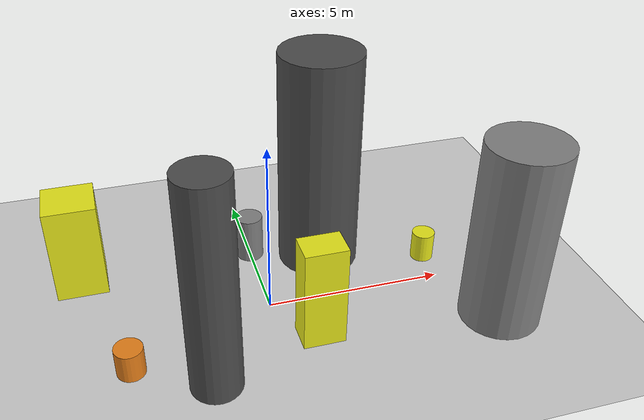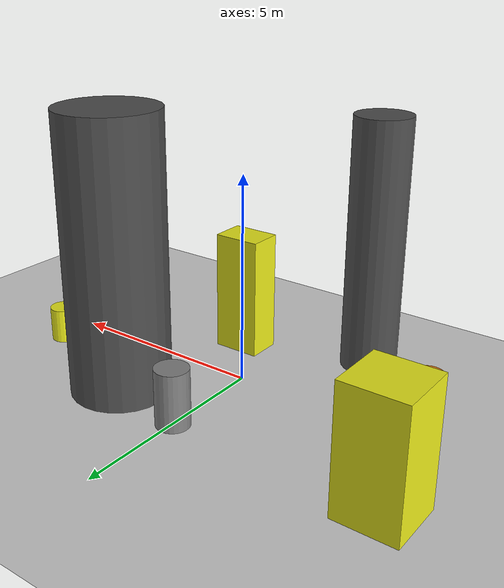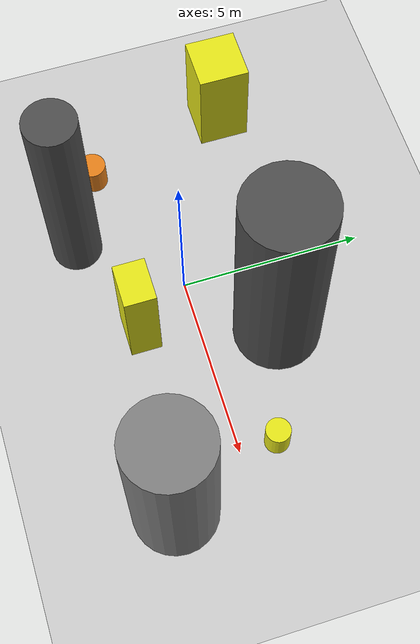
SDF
<?xml version='1.0'?>
<sdf version='1.6'>
  <world name='routeA_rl_v1__support_expansion__rl_train__mixed_3d_low_density_route__000125'>
    <!-- Sun light -->
    <light name='sun' type='directional'>
      <cast_shadows>1</cast_shadows>
      <pose>0 0 10 0 0 0</pose>
      <diffuse>0.8 0.8 0.8 1</diffuse>
      <specular>0.2 0.2 0.2 1</specular>
      <attenuation>
        <range>1000</range>
        <constant>0.9</constant>
        <linear>0.01</linear>
        <quadratic>0.001</quadratic>
      </attenuation>
      <direction>-0.5 0.1 -0.9</direction>
    </light>

    <!-- Ground plane -->
    <model name='ground_plane'>
      <static>1</static>
      <link name='link'>
        <collision name='collision'>
          <geometry>
            <plane>
              <normal>0 0 1</normal>
              <size>100 100</size>
            </plane>
          </geometry>
          <surface>
            <contact>
              <collide_bitmask>65535</collide_bitmask>
              <ode/>
            </contact>
            <friction>
              <ode>
                <mu>100</mu>
                <mu2>50</mu2>
              </ode>
              <torsional><ode/></torsional>
            </friction>
            <bounce/>
          </surface>
          <max_contacts>10</max_contacts>
        </collision>
        <visual name='visual'>
          <cast_shadows>0</cast_shadows>
          <geometry>
            <plane>
              <normal>0 0 1</normal>
              <size>100 100</size>
            </plane>
          </geometry>
          <material>
            <script>
              <uri>file://media/materials/scripts/gazebo.material</uri>
              <n>Gazebo/Grey</n>
            </script>
          </material>
        </visual>
      </link>
    </model>

    <!-- Environment -->
    <magnetic_field>6e-06 2.3e-05 -4.2e-05</magnetic_field>
    <atmosphere type='adiabatic'/>
    <physics name='default_physics' default='0' type='ode'>
      <gravity>0 0 -9.8</gravity>
      <max_step_size>0.004</max_step_size>
      <real_time_factor>1</real_time_factor>
      <real_time_update_rate>250</real_time_update_rate>
    </physics>
    <scene>
      <ambient>0.4 0.4 0.4 1</ambient>
      <background>0.7 0.7 0.7 1</background>
      <shadows>1</shadows>
    </scene>
    <wind/>
    <spherical_coordinates>
      <surface_model>EARTH_WGS84</surface_model>
      <latitude_deg>0</latitude_deg>
      <longitude_deg>0</longitude_deg>
      <elevation>0</elevation>
      <heading_deg>0</heading_deg>
    </spherical_coordinates>

    <!-- ============ OBSTACLES (8) ============ -->
    <model name='low_obs_0'>
      <static>1</static>
      <link name='link'>
        <visual name='visual'>
          <geometry>
            <cylinder>
              <radius>0.3783</radius>
              <length>0.8095</length>
            </cylinder>
          </geometry>
          <material>
            <script>
              <n>Gazebo/Orange</n>
              <uri>file://media/materials/scripts/gazebo.material</uri>
            </script>
            <ambient>0.9 0.5 0.1 1</ambient>
          </material>
        </visual>
        <collision name='collision'>
          <geometry>
            <cylinder>
              <radius>0.3783</radius>
              <length>0.8095</length>
            </cylinder>
          </geometry>
          <max_contacts>10</max_contacts>
          <surface>
            <contact><ode/></contact>
            <bounce/>
            <friction>
              <ode><mu>1</mu><mu2>1</mu2></ode>
              <torsional><ode/></torsional>
            </friction>
          </surface>
        </collision>
      </link>
      <pose>-4.0000 -1.5000 0.4047 0 0 0.0000</pose>
    </model>

    <model name='low_obs_1'>
      <static>1</static>
      <link name='link'>
        <visual name='visual'>
          <geometry>
            <cylinder>
              <radius>0.3947</radius>
              <length>1.3671</length>
            </cylinder>
          </geometry>
          <material>
            <script>
              <n>Gazebo/Grey</n>
              <uri>file://media/materials/scripts/gazebo.material</uri>
            </script>
            <ambient>0.5 0.5 0.5 1</ambient>
          </material>
        </visual>
        <collision name='collision'>
          <geometry>
            <cylinder>
              <radius>0.3947</radius>
              <length>1.3671</length>
            </cylinder>
          </geometry>
          <max_contacts>10</max_contacts>
          <surface>
            <contact><ode/></contact>
            <bounce/>
            <friction>
              <ode><mu>1</mu><mu2>1</mu2></ode>
              <torsional><ode/></torsional>
            </friction>
          </surface>
        </collision>
      </link>
      <pose>0.0000 2.5000 0.6835 0 0 0.0000</pose>
    </model>

    <model name='low_obs_2'>
      <static>1</static>
      <link name='link'>
        <visual name='visual'>
          <geometry>
            <cylinder>
              <radius>0.3305</radius>
              <length>0.8642</length>
            </cylinder>
          </geometry>
          <material>
            <script>
              <n>Gazebo/Yellow</n>
              <uri>file://media/materials/scripts/gazebo.material</uri>
            </script>
            <ambient>0.9 0.9 0.1 1</ambient>
          </material>
        </visual>
        <collision name='collision'>
          <geometry>
            <cylinder>
              <radius>0.3305</radius>
              <length>0.8642</length>
            </cylinder>
          </geometry>
          <max_contacts>10</max_contacts>
          <surface>
            <contact><ode/></contact>
            <bounce/>
            <friction>
              <ode><mu>1</mu><mu2>1</mu2></ode>
              <torsional><ode/></torsional>
            </friction>
          </surface>
        </collision>
      </link>
      <pose>5.0000 1.0000 0.4321 0 0 0.0000</pose>
    </model>

    <model name='tall_obs_0'>
      <static>1</static>
      <link name='link'>
        <visual name='visual'>
          <geometry>
            <cylinder>
              <radius>0.6825</radius>
              <length>6.1367</length>
            </cylinder>
          </geometry>
          <material>
            <script>
              <n>Gazebo/DarkGrey</n>
              <uri>file://media/materials/scripts/gazebo.material</uri>
            </script>
            <ambient>0.3 0.3 0.3 1</ambient>
          </material>
        </visual>
        <collision name='collision'>
          <geometry>
            <cylinder>
              <radius>0.6825</radius>
              <length>6.1367</length>
            </cylinder>
          </geometry>
          <max_contacts>10</max_contacts>
          <surface>
            <contact><ode/></contact>
            <bounce/>
            <friction>
              <ode><mu>1</mu><mu2>1</mu2></ode>
              <torsional><ode/></torsional>
            </friction>
          </surface>
        </collision>
      </link>
      <pose>-2.0000 -2.5000 3.0683 0 0 0.0000</pose>
    </model>

    <model name='tall_obs_1'>
      <static>1</static>
      <link name='link'>
        <visual name='visual'>
          <geometry>
            <cylinder>
              <radius>1.1783</radius>
              <length>6.5420</length>
            </cylinder>
          </geometry>
          <material>
            <script>
              <n>Gazebo/DarkGrey</n>
              <uri>file://media/materials/scripts/gazebo.material</uri>
            </script>
            <ambient>0.3 0.3 0.3 1</ambient>
          </material>
        </visual>
        <collision name='collision'>
          <geometry>
            <cylinder>
              <radius>1.1783</radius>
              <length>6.5420</length>
            </cylinder>
          </geometry>
          <max_contacts>10</max_contacts>
          <surface>
            <contact><ode/></contact>
            <bounce/>
            <friction>
              <ode><mu>1</mu><mu2>1</mu2></ode>
              <torsional><ode/></torsional>
            </friction>
          </surface>
        </collision>
      </link>
      <pose>2.0000 2.0000 3.2710 0 0 0.0000</pose>
    </model>

    <model name='tall_obs_2'>
      <static>1</static>
      <link name='link'>
        <visual name='visual'>
          <geometry>
            <cylinder>
              <radius>1.1100</radius>
              <length>5.3414</length>
            </cylinder>
          </geometry>
          <material>
            <script>
              <n>Gazebo/Grey</n>
              <uri>file://media/materials/scripts/gazebo.material</uri>
            </script>
            <ambient>0.5 0.5 0.5 1</ambient>
          </material>
        </visual>
        <collision name='collision'>
          <geometry>
            <cylinder>
              <radius>1.1100</radius>
              <length>5.3414</length>
            </cylinder>
          </geometry>
          <max_contacts>10</max_contacts>
          <surface>
            <contact><ode/></contact>
            <bounce/>
            <friction>
              <ode><mu>1</mu><mu2>1</mu2></ode>
              <torsional><ode/></torsional>
            </friction>
          </surface>
        </collision>
      </link>
      <pose>6.0000 -2.0000 2.6707 0 0 0.0000</pose>
    </model>

    <model name='med_obs_0'>
      <static>1</static>
      <link name='link'>
        <visual name='visual'>
          <geometry>
            <box>
              <size>1.4266 1.3837 2.8576</size>
            </box>
          </geometry>
          <material>
            <script>
              <n>Gazebo/Yellow</n>
              <uri>file://media/materials/scripts/gazebo.material</uri>
            </script>
            <ambient>0.9 0.9 0.1 1</ambient>
          </material>
        </visual>
        <collision name='collision'>
          <geometry>
            <box>
              <size>1.4266 1.3837 2.8576</size>
            </box>
          </geometry>
          <max_contacts>10</max_contacts>
          <surface>
            <contact><ode/></contact>
            <bounce/>
            <friction>
              <ode><mu>1</mu><mu2>1</mu2></ode>
              <torsional><ode/></torsional>
            </friction>
          </surface>
        </collision>
      </link>
      <pose>-5.0000 2.5000 1.4288 0 0 0.0000</pose>
    </model>

    <model name='med_obs_1'>
      <static>1</static>
      <link name='link'>
        <visual name='visual'>
          <geometry>
            <box>
              <size>1.1559 0.8415 2.9818</size>
            </box>
          </geometry>
          <material>
            <script>
              <n>Gazebo/Yellow</n>
              <uri>file://media/materials/scripts/gazebo.material</uri>
            </script>
            <ambient>0.9 0.9 0.1 1</ambient>
          </material>
        </visual>
        <collision name='collision'>
          <geometry>
            <box>
              <size>1.1559 0.8415 2.9818</size>
            </box>
          </geometry>
          <max_contacts>10</max_contacts>
          <surface>
            <contact><ode/></contact>
            <bounce/>
            <friction>
              <ode><mu>1</mu><mu2>1</mu2></ode>
              <torsional><ode/></torsional>
            </friction>
          </surface>
        </collision>
      </link>
      <pose>1.0000 -1.5000 1.4909 0 0 0.0000</pose>
    </model>

    <!-- GUI camera -->
    <gui fullscreen='0'>
      <camera name='user_camera'>
        <pose>-15 0 18 0 0.85 0.15</pose>
        <view_controller>orbit</view_controller>
        <projection_type>perspective</projection_type>
      </camera>
    </gui>
  </world>
</sdf>
